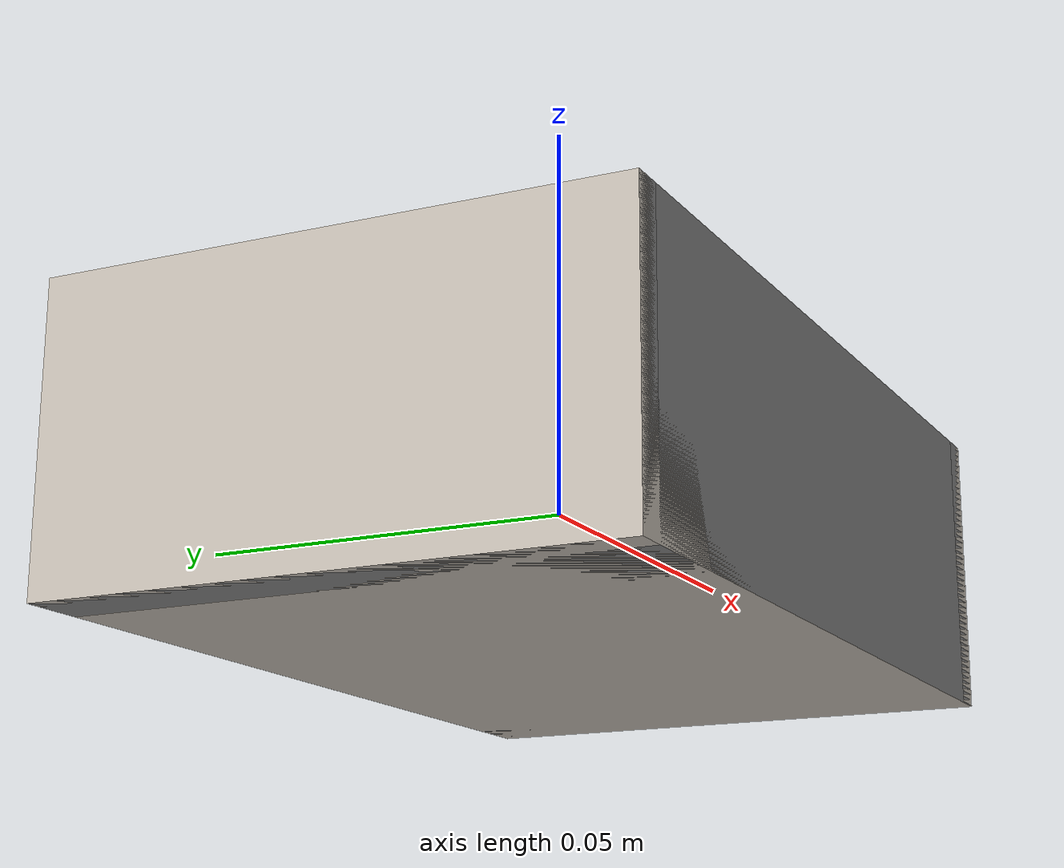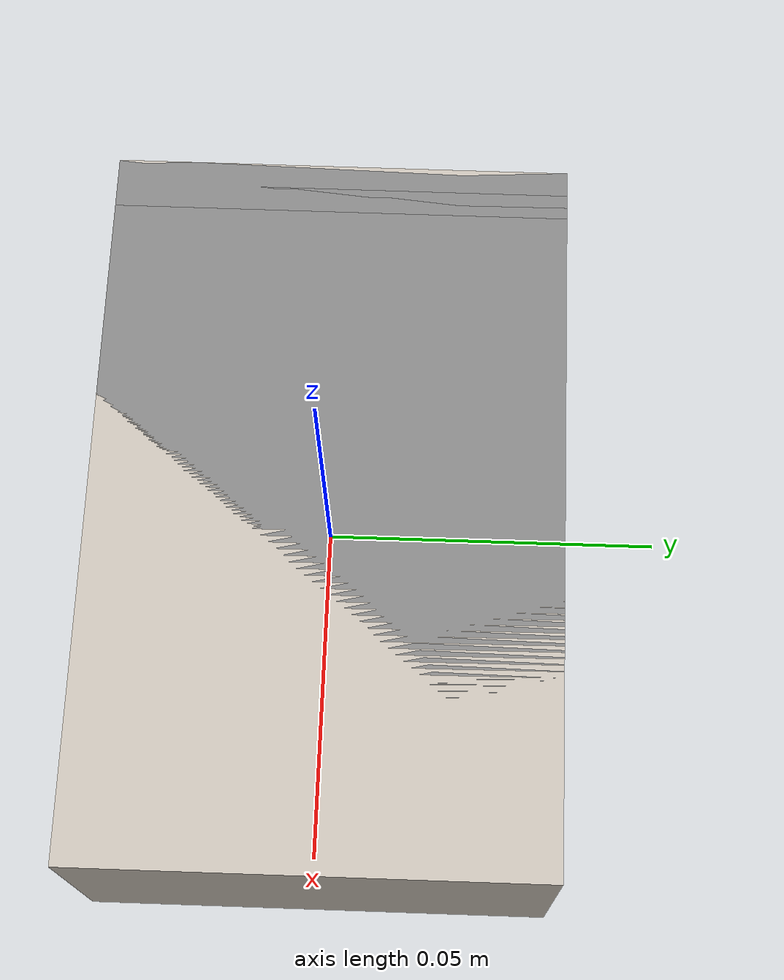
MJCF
<mujoco model="vla82_vla82_002">
  <compiler angle="radian"/>
  <asset>
    <texture name="source_texture" type="2d" file="source_texture.png"/>
    <material name="source_material" texture="source_texture" rgba="1 1 1 1"/>
  </asset>
  <default>
    <default class="visual"><geom contype="0" conaffinity="0" group="1"/></default>
    <default class="collision"><geom contype="1" conaffinity="1" group="0" density="65" friction="1.20 0.35 0.12" solref="0.02 1" solimp="0.88 0.95 0.003"/></default>
    <default class="region"><geom contype="0" conaffinity="0" group="1" rgba="0 1 0 0" mass="0"/></default>
  </default>
  <worldbody><body><body name="object">
    <geom name="visual" class="visual" type="box" size="0.055000 0.035000 0.018000" material="source_material"/>
    <geom name="collision_core" class="collision" type="box" size="0.051000 0.035000 0.018000" mass="0.012"/>
    <geom name="collision_left_compliant" class="collision" type="box" pos="-0.051000 0 0" size="0.004000 0.035000 0.018000" mass="0.003"/>
    <geom name="collision_right_compliant" class="collision" type="box" pos="0.051000 0 0" size="0.004000 0.035000 0.018000" mass="0.003"/>
    <geom name="reg_bbox" class="region" type="box" pos="0 0 0" size="0.055000 0.035000 0.018000"/>
  </body></body></worldbody>
  <actuator/>
</mujoco>
